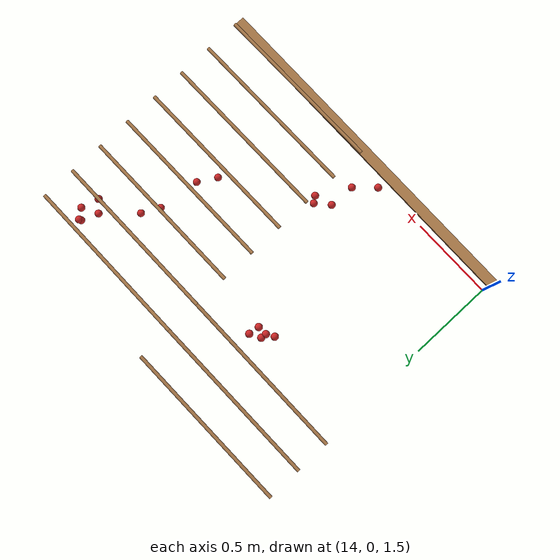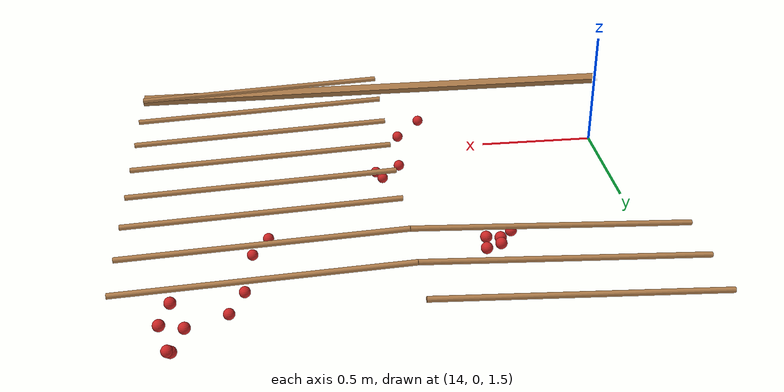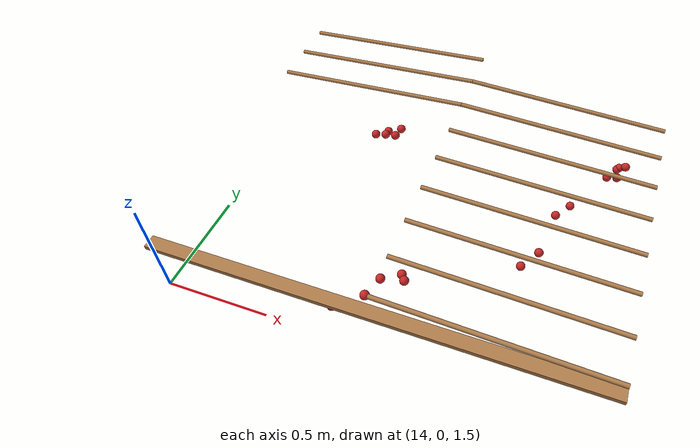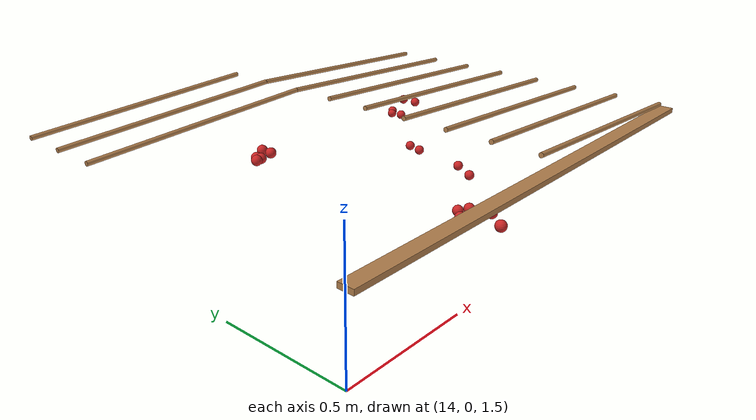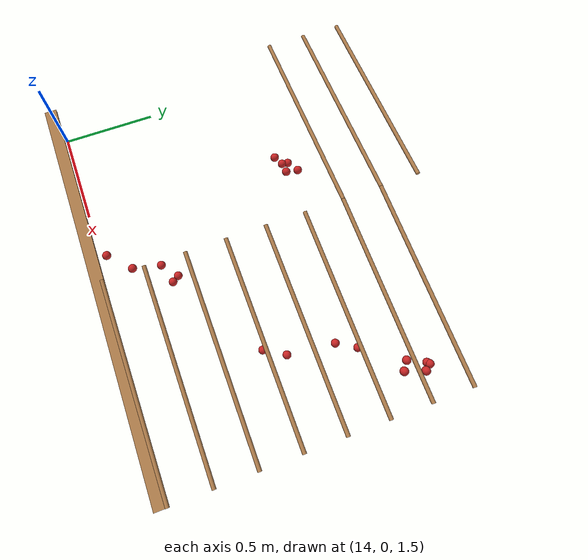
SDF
<sdf version="1.4">
 <model name="pergola">
  <link name="beam_77">
   <pose>15.0 0.0 1.81 0 0 0</pose>
   <collision name="collision"><geometry><box><size>2.0 0.06 0.02</size></box></geometry></collision>
   <visual name="visual">
    <geometry><box><size>2.0 0.06 0.02</size></box></geometry>
    <material><script><name>Gazebo/Wood</name></script></material>
   </visual>
   <inertial>
    <mass>5</mass>
    <inertia>
     <ixx>0.0016666666666666668</ixx>
     <ixy>0.0</ixy>
     <ixz>0.0</ixz>
     <iyy>1.6681666666666664</iyy>
     <iyz>0.0</iyz>
     <izz>1.6668333333333332</izz>
    </inertia>
   </inertial>
  </link>
  <link name="vine_1401">
   <pose>15.5 0.03 1.85 0 -1.5208379310729538 0</pose>
   <collision name="collision">
    <geometry><cylinder><radius>0.01</radius><length>1.0012492197250393</length></cylinder></geometry>
   </collision>
   <visual name="visual">
    <geometry><cylinder><radius>0.01</radius><length>1.0012492197250393</length></cylinder></geometry>
    <material><script><name>Gazebo/WoodFloor</name></script></material>
   </visual>
   <inertial>
    <mass>5</mass>
    <inertia>
     <ixx>0.41783333333333345</ixx>
     <ixy>0.0</ixy>
     <ixz>0.0</ixz>
     <iyy>0.41783333333333345</iyy>
     <iyz>0.0</iyz>
     <izz>0.00025</izz>
    </inertia>
   </inertial>
  </link>
  <link name="vine_1403">
   <pose>15.5 0.23 1.85 0 -1.5208379310729538 0</pose>
   <collision name="collision">
    <geometry><cylinder><radius>0.01</radius><length>1.0012492197250393</length></cylinder></geometry>
   </collision>
   <visual name="visual">
    <geometry><cylinder><radius>0.01</radius><length>1.0012492197250393</length></cylinder></geometry>
    <material><script><name>Gazebo/WoodFloor</name></script></material>
   </visual>
   <inertial>
    <mass>5</mass>
    <inertia>
     <ixx>0.41783333333333345</ixx>
     <ixy>0.0</ixy>
     <ixz>0.0</ixz>
     <iyy>0.41783333333333345</iyy>
     <iyz>0.0</iyz>
     <izz>0.00025</izz>
    </inertia>
   </inertial>
  </link>
  <link name="vine_1405">
   <pose>15.5 0.43000000000000005 1.85 0 -1.5208379310729538 0</pose>
   <collision name="collision">
    <geometry><cylinder><radius>0.01</radius><length>1.0012492197250393</length></cylinder></geometry>
   </collision>
   <visual name="visual">
    <geometry><cylinder><radius>0.01</radius><length>1.0012492197250393</length></cylinder></geometry>
    <material><script><name>Gazebo/WoodFloor</name></script></material>
   </visual>
   <inertial>
    <mass>5</mass>
    <inertia>
     <ixx>0.41783333333333345</ixx>
     <ixy>0.0</ixy>
     <ixz>0.0</ixz>
     <iyy>0.41783333333333345</iyy>
     <iyz>0.0</iyz>
     <izz>0.00025</izz>
    </inertia>
   </inertial>
  </link>
  <link name="vine_1407">
   <pose>15.5 0.6300000000000001 1.85 0 -1.5208379310729538 0</pose>
   <collision name="collision">
    <geometry><cylinder><radius>0.01</radius><length>1.0012492197250393</length></cylinder></geometry>
   </collision>
   <visual name="visual">
    <geometry><cylinder><radius>0.01</radius><length>1.0012492197250393</length></cylinder></geometry>
    <material><script><name>Gazebo/WoodFloor</name></script></material>
   </visual>
   <inertial>
    <mass>5</mass>
    <inertia>
     <ixx>0.41783333333333345</ixx>
     <ixy>0.0</ixy>
     <ixz>0.0</ixz>
     <iyy>0.41783333333333345</iyy>
     <iyz>0.0</iyz>
     <izz>0.00025</izz>
    </inertia>
   </inertial>
  </link>
  <link name="vine_1409">
   <pose>15.5 0.8300000000000001 1.85 0 -1.5208379310729538 0</pose>
   <collision name="collision">
    <geometry><cylinder><radius>0.01</radius><length>1.0012492197250393</length></cylinder></geometry>
   </collision>
   <visual name="visual">
    <geometry><cylinder><radius>0.01</radius><length>1.0012492197250393</length></cylinder></geometry>
    <material><script><name>Gazebo/WoodFloor</name></script></material>
   </visual>
   <inertial>
    <mass>5</mass>
    <inertia>
     <ixx>0.41783333333333345</ixx>
     <ixy>0.0</ixy>
     <ixz>0.0</ixz>
     <iyy>0.41783333333333345</iyy>
     <iyz>0.0</iyz>
     <izz>0.00025</izz>
    </inertia>
   </inertial>
  </link>
  <link name="vine_1411">
   <pose>15.5 1.03 1.85 0 -1.5208379310729538 0</pose>
   <collision name="collision">
    <geometry><cylinder><radius>0.01</radius><length>1.0012492197250393</length></cylinder></geometry>
   </collision>
   <visual name="visual">
    <geometry><cylinder><radius>0.01</radius><length>1.0012492197250393</length></cylinder></geometry>
    <material><script><name>Gazebo/WoodFloor</name></script></material>
   </visual>
   <inertial>
    <mass>5</mass>
    <inertia>
     <ixx>0.41783333333333345</ixx>
     <ixy>0.0</ixy>
     <ixz>0.0</ixz>
     <iyy>0.41783333333333345</iyy>
     <iyz>0.0</iyz>
     <izz>0.00025</izz>
    </inertia>
   </inertial>
  </link>
  <link name="vine_1412">
   <pose>14.5 1.2300000000000002 1.85 0 1.5208379310729538 0</pose>
   <collision name="collision">
    <geometry><cylinder><radius>0.01</radius><length>1.0012492197250393</length></cylinder></geometry>
   </collision>
   <visual name="visual">
    <geometry><cylinder><radius>0.01</radius><length>1.0012492197250393</length></cylinder></geometry>
    <material><script><name>Gazebo/WoodFloor</name></script></material>
   </visual>
   <inertial>
    <mass>5</mass>
    <inertia>
     <ixx>0.41783333333333345</ixx>
     <ixy>0.0</ixy>
     <ixz>0.0</ixz>
     <iyy>0.41783333333333345</iyy>
     <iyz>0.0</iyz>
     <izz>0.00025</izz>
    </inertia>
   </inertial>
  </link>
  <link name="vine_1413">
   <pose>15.5 1.2300000000000002 1.85 0 -1.5208379310729538 0</pose>
   <collision name="collision">
    <geometry><cylinder><radius>0.01</radius><length>1.0012492197250393</length></cylinder></geometry>
   </collision>
   <visual name="visual">
    <geometry><cylinder><radius>0.01</radius><length>1.0012492197250393</length></cylinder></geometry>
    <material><script><name>Gazebo/WoodFloor</name></script></material>
   </visual>
   <inertial>
    <mass>5</mass>
    <inertia>
     <ixx>0.41783333333333345</ixx>
     <ixy>0.0</ixy>
     <ixz>0.0</ixz>
     <iyy>0.41783333333333345</iyy>
     <iyz>0.0</iyz>
     <izz>0.00025</izz>
    </inertia>
   </inertial>
  </link>
  <link name="vine_1414">
   <pose>14.5 1.4300000000000002 1.85 0 1.5208379310729538 0</pose>
   <collision name="collision">
    <geometry><cylinder><radius>0.01</radius><length>1.0012492197250393</length></cylinder></geometry>
   </collision>
   <visual name="visual">
    <geometry><cylinder><radius>0.01</radius><length>1.0012492197250393</length></cylinder></geometry>
    <material><script><name>Gazebo/WoodFloor</name></script></material>
   </visual>
   <inertial>
    <mass>5</mass>
    <inertia>
     <ixx>0.41783333333333345</ixx>
     <ixy>0.0</ixy>
     <ixz>0.0</ixz>
     <iyy>0.41783333333333345</iyy>
     <iyz>0.0</iyz>
     <izz>0.00025</izz>
    </inertia>
   </inertial>
  </link>
  <link name="vine_1415">
   <pose>15.5 1.4300000000000002 1.85 0 -1.5208379310729538 0</pose>
   <collision name="collision">
    <geometry><cylinder><radius>0.01</radius><length>1.0012492197250393</length></cylinder></geometry>
   </collision>
   <visual name="visual">
    <geometry><cylinder><radius>0.01</radius><length>1.0012492197250393</length></cylinder></geometry>
    <material><script><name>Gazebo/WoodFloor</name></script></material>
   </visual>
   <inertial>
    <mass>5</mass>
    <inertia>
     <ixx>0.41783333333333345</ixx>
     <ixy>0.0</ixy>
     <ixz>0.0</ixz>
     <iyy>0.41783333333333345</iyy>
     <iyz>0.0</iyz>
     <izz>0.00025</izz>
    </inertia>
   </inertial>
  </link>
  <link name="vine_1416">
   <pose>14.5 1.6300000000000001 1.85 0 1.5208379310729538 0</pose>
   <collision name="collision">
    <geometry><cylinder><radius>0.01</radius><length>1.0012492197250393</length></cylinder></geometry>
   </collision>
   <visual name="visual">
    <geometry><cylinder><radius>0.01</radius><length>1.0012492197250393</length></cylinder></geometry>
    <material><script><name>Gazebo/WoodFloor</name></script></material>
   </visual>
   <inertial>
    <mass>5</mass>
    <inertia>
     <ixx>0.41783333333333345</ixx>
     <ixy>0.0</ixy>
     <ixz>0.0</ixz>
     <iyy>0.41783333333333345</iyy>
     <iyz>0.0</iyz>
     <izz>0.00025</izz>
    </inertia>
   </inertial>
  </link>
  <link name="fruit_20">
   <pose>15.494100836299742 0.6453985548451657 1.484226827164513 0 0 0</pose>
   <collision name="fruit_collision_20"><geometry><sphere><radius>0.022</radius></sphere></geometry></collision>
   <visual name="visual">
    <geometry><sphere><radius>0.022</radius></sphere></geometry>
    <material><script><name>Gazebo/Red</name></script></material>
   </visual>
   <inertial>
    <mass>0.05</mass>
    <inertia>
     <ixx>9.679999999999999e-06</ixx>
     <ixy>0.0</ixy>
     <ixz>0.0</ixz>
     <iyy>9.679999999999999e-06</iyy>
     <iyz>0.0</iyz>
     <izz>9.679999999999999e-06</izz>
    </inertia>
   </inertial>
   <sensor name="fruit_contact_20" type="contact">
    <contact><collision>fruit_collision_20</collision></contact>
   </sensor>
  </link>
  <link name="fruit_38">
   <pose>14.812954335467408 0.055021293804388915 1.6698954281509322 0 0 0</pose>
   <collision name="fruit_collision_38"><geometry><sphere><radius>0.022</radius></sphere></geometry></collision>
   <visual name="visual">
    <geometry><sphere><radius>0.022</radius></sphere></geometry>
    <material><script><name>Gazebo/Red</name></script></material>
   </visual>
   <inertial>
    <mass>0.05</mass>
    <inertia>
     <ixx>9.679999999999999e-06</ixx>
     <ixy>0.0</ixy>
     <ixz>0.0</ixz>
     <iyy>9.679999999999999e-06</iyy>
     <iyz>0.0</iyz>
     <izz>9.679999999999999e-06</izz>
    </inertia>
   </inertial>
   <sensor name="fruit_contact_38" type="contact">
    <contact><collision>fruit_collision_38</collision></contact>
   </sensor>
  </link>
  <link name="fruit_41">
   <pose>14.925892653075389 0.2963381365756555 1.5857544053164971 0 0 0</pose>
   <collision name="fruit_collision_41"><geometry><sphere><radius>0.022</radius></sphere></geometry></collision>
   <visual name="visual">
    <geometry><sphere><radius>0.022</radius></sphere></geometry>
    <material><script><name>Gazebo/Red</name></script></material>
   </visual>
   <inertial>
    <mass>0.05</mass>
    <inertia>
     <ixx>9.679999999999999e-06</ixx>
     <ixy>0.0</ixy>
     <ixz>0.0</ixz>
     <iyy>9.679999999999999e-06</iyy>
     <iyz>0.0</iyz>
     <izz>9.679999999999999e-06</izz>
    </inertia>
   </inertial>
   <sensor name="fruit_contact_41" type="contact">
    <contact><collision>fruit_collision_41</collision></contact>
   </sensor>
  </link>
  <link name="fruit_70">
   <pose>15.586698571782977 1.0032844171130308 1.4906547213343881 0 0 0</pose>
   <collision name="fruit_collision_70"><geometry><sphere><radius>0.022</radius></sphere></geometry></collision>
   <visual name="visual">
    <geometry><sphere><radius>0.022</radius></sphere></geometry>
    <material><script><name>Gazebo/Red</name></script></material>
   </visual>
   <inertial>
    <mass>0.05</mass>
    <inertia>
     <ixx>9.679999999999999e-06</ixx>
     <ixy>0.0</ixy>
     <ixz>0.0</ixz>
     <iyy>9.679999999999999e-06</iyy>
     <iyz>0.0</iyz>
     <izz>9.679999999999999e-06</izz>
    </inertia>
   </inertial>
   <sensor name="fruit_contact_70" type="contact">
    <contact><collision>fruit_collision_70</collision></contact>
   </sensor>
  </link>
  <link name="fruit_252">
   <pose>15.787756427455951 1.2843121503406971 1.5620919080496565 0 0 0</pose>
   <collision name="fruit_collision_252"><geometry><sphere><radius>0.022</radius></sphere></geometry></collision>
   <visual name="visual">
    <geometry><sphere><radius>0.022</radius></sphere></geometry>
    <material><script><name>Gazebo/Red</name></script></material>
   </visual>
   <inertial>
    <mass>0.05</mass>
    <inertia>
     <ixx>9.679999999999999e-06</ixx>
     <ixy>0.0</ixy>
     <ixz>0.0</ixz>
     <iyy>9.679999999999999e-06</iyy>
     <iyz>0.0</iyz>
     <izz>9.679999999999999e-06</izz>
    </inertia>
   </inertial>
   <sensor name="fruit_contact_252" type="contact">
    <contact><collision>fruit_collision_252</collision></contact>
   </sensor>
  </link>
  <link name="fruit_296">
   <pose>14.600730043950733 1.0387600291028711 1.7126938131524807 0 0 0</pose>
   <collision name="fruit_collision_296"><geometry><sphere><radius>0.022</radius></sphere></geometry></collision>
   <visual name="visual">
    <geometry><sphere><radius>0.022</radius></sphere></geometry>
    <material><script><name>Gazebo/Red</name></script></material>
   </visual>
   <inertial>
    <mass>0.05</mass>
    <inertia>
     <ixx>9.679999999999999e-06</ixx>
     <ixy>0.0</ixy>
     <ixz>0.0</ixz>
     <iyy>9.679999999999999e-06</iyy>
     <iyz>0.0</iyz>
     <izz>9.679999999999999e-06</izz>
    </inertia>
   </inertial>
   <sensor name="fruit_contact_296" type="contact">
    <contact><collision>fruit_collision_296</collision></contact>
   </sensor>
  </link>
  <link name="fruit_345">
   <pose>15.832608288146412 1.228804170030775 1.6314667475354032 0 0 0</pose>
   <collision name="fruit_collision_345"><geometry><sphere><radius>0.022</radius></sphere></geometry></collision>
   <visual name="visual">
    <geometry><sphere><radius>0.022</radius></sphere></geometry>
    <material><script><name>Gazebo/Red</name></script></material>
   </visual>
   <inertial>
    <mass>0.05</mass>
    <inertia>
     <ixx>9.679999999999999e-06</ixx>
     <ixy>0.0</ixy>
     <ixz>0.0</ixz>
     <iyy>9.679999999999999e-06</iyy>
     <iyz>0.0</iyz>
     <izz>9.679999999999999e-06</izz>
    </inertia>
   </inertial>
   <sensor name="fruit_contact_345" type="contact">
    <contact><collision>fruit_collision_345</collision></contact>
   </sensor>
  </link>
  <link name="fruit_422">
   <pose>15.865377730101283 1.3320958324740195 1.6182837693836485 0 0 0</pose>
   <collision name="fruit_collision_422"><geometry><sphere><radius>0.022</radius></sphere></geometry></collision>
   <visual name="visual">
    <geometry><sphere><radius>0.022</radius></sphere></geometry>
    <material><script><name>Gazebo/Red</name></script></material>
   </visual>
   <inertial>
    <mass>0.05</mass>
    <inertia>
     <ixx>9.679999999999999e-06</ixx>
     <ixy>0.0</ixy>
     <ixz>0.0</ixz>
     <iyy>9.679999999999999e-06</iyy>
     <iyz>0.0</iyz>
     <izz>9.679999999999999e-06</izz>
    </inertia>
   </inertial>
   <sensor name="fruit_contact_422" type="contact">
    <contact><collision>fruit_collision_422</collision></contact>
   </sensor>
  </link>
  <link name="fruit_441">
   <pose>15.830582958026703 1.3812162945147086 1.5402937185966588 0 0 0</pose>
   <collision name="fruit_collision_441"><geometry><sphere><radius>0.022</radius></sphere></geometry></collision>
   <visual name="visual">
    <geometry><sphere><radius>0.022</radius></sphere></geometry>
    <material><script><name>Gazebo/Red</name></script></material>
   </visual>
   <inertial>
    <mass>0.05</mass>
    <inertia>
     <ixx>9.679999999999999e-06</ixx>
     <ixy>0.0</ixy>
     <ixz>0.0</ixz>
     <iyy>9.679999999999999e-06</iyy>
     <iyz>0.0</iyz>
     <izz>9.679999999999999e-06</izz>
    </inertia>
   </inertial>
   <sensor name="fruit_contact_441" type="contact">
    <contact><collision>fruit_collision_441</collision></contact>
   </sensor>
  </link>
  <link name="fruit_548">
   <pose>15.840805828921019 1.3872100352560581 1.5504754391493734 0 0 0</pose>
   <collision name="fruit_collision_548"><geometry><sphere><radius>0.022</radius></sphere></geometry></collision>
   <visual name="visual">
    <geometry><sphere><radius>0.022</radius></sphere></geometry>
    <material><script><name>Gazebo/Red</name></script></material>
   </visual>
   <inertial>
    <mass>0.05</mass>
    <inertia>
     <ixx>9.679999999999999e-06</ixx>
     <ixy>0.0</ixy>
     <ixz>0.0</ixz>
     <iyy>9.679999999999999e-06</iyy>
     <iyz>0.0</iyz>
     <izz>9.679999999999999e-06</izz>
    </inertia>
   </inertial>
   <sensor name="fruit_contact_548" type="contact">
    <contact><collision>fruit_collision_548</collision></contact>
   </sensor>
  </link>
  <link name="fruit_554">
   <pose>15.557995044703986 0.7523379659363145 1.4830110232282783 0 0 0</pose>
   <collision name="fruit_collision_554"><geometry><sphere><radius>0.022</radius></sphere></geometry></collision>
   <visual name="visual">
    <geometry><sphere><radius>0.022</radius></sphere></geometry>
    <material><script><name>Gazebo/Red</name></script></material>
   </visual>
   <inertial>
    <mass>0.05</mass>
    <inertia>
     <ixx>9.679999999999999e-06</ixx>
     <ixy>0.0</ixy>
     <ixz>0.0</ixz>
     <iyy>9.679999999999999e-06</iyy>
     <iyz>0.0</iyz>
     <izz>9.679999999999999e-06</izz>
    </inertia>
   </inertial>
   <sensor name="fruit_contact_554" type="contact">
    <contact><collision>fruit_collision_554</collision></contact>
   </sensor>
  </link>
  <link name="fruit_592">
   <pose>15.644432071259606 1.1061106790754671 1.472640250537993 0 0 0</pose>
   <collision name="fruit_collision_592"><geometry><sphere><radius>0.022</radius></sphere></geometry></collision>
   <visual name="visual">
    <geometry><sphere><radius>0.022</radius></sphere></geometry>
    <material><script><name>Gazebo/Red</name></script></material>
   </visual>
   <inertial>
    <mass>0.05</mass>
    <inertia>
     <ixx>9.679999999999999e-06</ixx>
     <ixy>0.0</ixy>
     <ixz>0.0</ixz>
     <iyy>9.679999999999999e-06</iyy>
     <iyz>0.0</iyz>
     <izz>9.679999999999999e-06</izz>
    </inertia>
   </inertial>
   <sensor name="fruit_contact_592" type="contact">
    <contact><collision>fruit_collision_592</collision></contact>
   </sensor>
  </link>
  <link name="fruit_669">
   <pose>15.02819464094865 0.32677487889115797 1.5768160386921257 0 0 0</pose>
   <collision name="fruit_collision_669"><geometry><sphere><radius>0.022</radius></sphere></geometry></collision>
   <visual name="visual">
    <geometry><sphere><radius>0.022</radius></sphere></geometry>
    <material><script><name>Gazebo/Red</name></script></material>
   </visual>
   <inertial>
    <mass>0.05</mass>
    <inertia>
     <ixx>9.679999999999999e-06</ixx>
     <ixy>0.0</ixy>
     <ixz>0.0</ixz>
     <iyy>9.679999999999999e-06</iyy>
     <iyz>0.0</iyz>
     <izz>9.679999999999999e-06</izz>
    </inertia>
   </inertial>
   <sensor name="fruit_contact_669" type="contact">
    <contact><collision>fruit_collision_669</collision></contact>
   </sensor>
  </link>
  <link name="fruit_676">
   <pose>15.002959053517653 0.360984412247049 1.56695532455254 0 0 0</pose>
   <collision name="fruit_collision_676"><geometry><sphere><radius>0.022</radius></sphere></geometry></collision>
   <visual name="visual">
    <geometry><sphere><radius>0.022</radius></sphere></geometry>
    <material><script><name>Gazebo/Red</name></script></material>
   </visual>
   <inertial>
    <mass>0.05</mass>
    <inertia>
     <ixx>9.679999999999999e-06</ixx>
     <ixy>0.0</ixy>
     <ixz>0.0</ixz>
     <iyy>9.679999999999999e-06</iyy>
     <iyz>0.0</iyz>
     <izz>9.679999999999999e-06</izz>
    </inertia>
   </inertial>
   <sensor name="fruit_contact_676" type="contact">
    <contact><collision>fruit_collision_676</collision></contact>
   </sensor>
  </link>
  <link name="fruit_768">
   <pose>14.643862924742551 1.064483941720926 1.7020815935200777 0 0 0</pose>
   <collision name="fruit_collision_768"><geometry><sphere><radius>0.022</radius></sphere></geometry></collision>
   <visual name="visual">
    <geometry><sphere><radius>0.022</radius></sphere></geometry>
    <material><script><name>Gazebo/Red</name></script></material>
   </visual>
   <inertial>
    <mass>0.05</mass>
    <inertia>
     <ixx>9.679999999999999e-06</ixx>
     <ixy>0.0</ixy>
     <ixz>0.0</ixz>
     <iyy>9.679999999999999e-06</iyy>
     <iyz>0.0</iyz>
     <izz>9.679999999999999e-06</izz>
    </inertia>
   </inertial>
   <sensor name="fruit_contact_768" type="contact">
    <contact><collision>fruit_collision_768</collision></contact>
   </sensor>
  </link>
  <link name="fruit_770">
   <pose>14.698081770326098 1.0665278260561626 1.7098364232835583 0 0 0</pose>
   <collision name="fruit_collision_770"><geometry><sphere><radius>0.022</radius></sphere></geometry></collision>
   <visual name="visual">
    <geometry><sphere><radius>0.022</radius></sphere></geometry>
    <material><script><name>Gazebo/Red</name></script></material>
   </visual>
   <inertial>
    <mass>0.05</mass>
    <inertia>
     <ixx>9.679999999999999e-06</ixx>
     <ixy>0.0</ixy>
     <ixz>0.0</ixz>
     <iyy>9.679999999999999e-06</iyy>
     <iyz>0.0</iyz>
     <izz>9.679999999999999e-06</izz>
    </inertia>
   </inertial>
   <sensor name="fruit_contact_770" type="contact">
    <contact><collision>fruit_collision_770</collision></contact>
   </sensor>
  </link>
  <link name="fruit_811">
   <pose>14.706719326316971 1.1286731508772172 1.7038580731665096 0 0 0</pose>
   <collision name="fruit_collision_811"><geometry><sphere><radius>0.022</radius></sphere></geometry></collision>
   <visual name="visual">
    <geometry><sphere><radius>0.022</radius></sphere></geometry>
    <material><script><name>Gazebo/Red</name></script></material>
   </visual>
   <inertial>
    <mass>0.05</mass>
    <inertia>
     <ixx>9.679999999999999e-06</ixx>
     <ixy>0.0</ixy>
     <ixz>0.0</ixz>
     <iyy>9.679999999999999e-06</iyy>
     <iyz>0.0</iyz>
     <izz>9.679999999999999e-06</izz>
    </inertia>
   </inertial>
   <sensor name="fruit_contact_811" type="contact">
    <contact><collision>fruit_collision_811</collision></contact>
   </sensor>
  </link>
  <link name="fruit_936">
   <pose>14.915231473611207 0.15745889313519817 1.650844130904421 0 0 0</pose>
   <collision name="fruit_collision_936"><geometry><sphere><radius>0.022</radius></sphere></geometry></collision>
   <visual name="visual">
    <geometry><sphere><radius>0.022</radius></sphere></geometry>
    <material><script><name>Gazebo/Red</name></script></material>
   </visual>
   <inertial>
    <mass>0.05</mass>
    <inertia>
     <ixx>9.679999999999999e-06</ixx>
     <ixy>0.0</ixy>
     <ixz>0.0</ixz>
     <iyy>9.679999999999999e-06</iyy>
     <iyz>0.0</iyz>
     <izz>9.679999999999999e-06</izz>
    </inertia>
   </inertial>
   <sensor name="fruit_contact_936" type="contact">
    <contact><collision>fruit_collision_936</collision></contact>
   </sensor>
  </link>
  <link name="fruit_983">
   <pose>14.646919669591778 1.0954838853272055 1.6975447421933376 0 0 0</pose>
   <collision name="fruit_collision_983"><geometry><sphere><radius>0.022</radius></sphere></geometry></collision>
   <visual name="visual">
    <geometry><sphere><radius>0.022</radius></sphere></geometry>
    <material><script><name>Gazebo/Red</name></script></material>
   </visual>
   <inertial>
    <mass>0.05</mass>
    <inertia>
     <ixx>9.679999999999999e-06</ixx>
     <ixy>0.0</ixy>
     <ixz>0.0</ixz>
     <iyy>9.679999999999999e-06</iyy>
     <iyz>0.0</iyz>
     <izz>9.679999999999999e-06</izz>
    </inertia>
   </inertial>
   <sensor name="fruit_contact_983" type="contact">
    <contact><collision>fruit_collision_983</collision></contact>
   </sensor>
  </link>
 </model>
</sdf>
